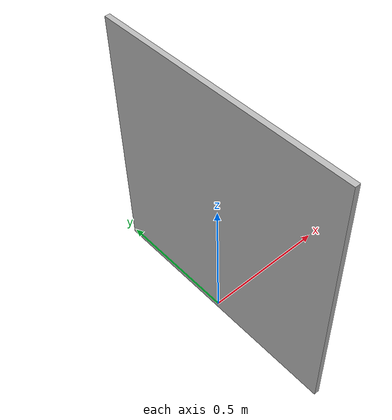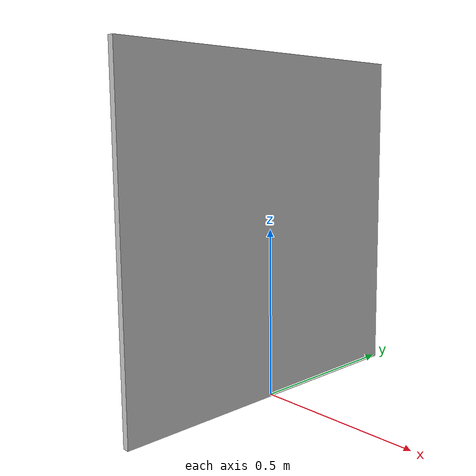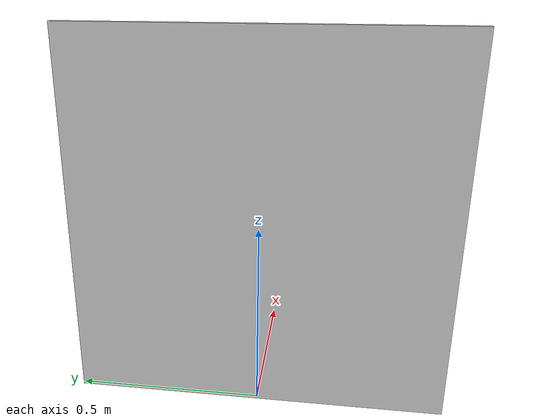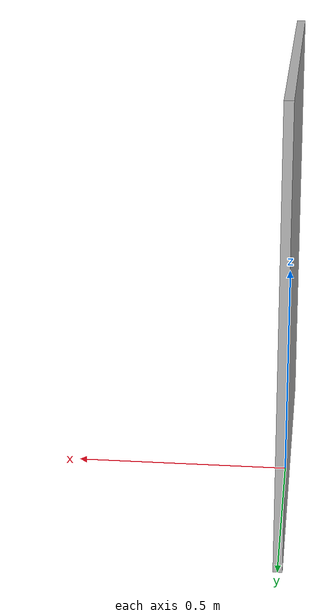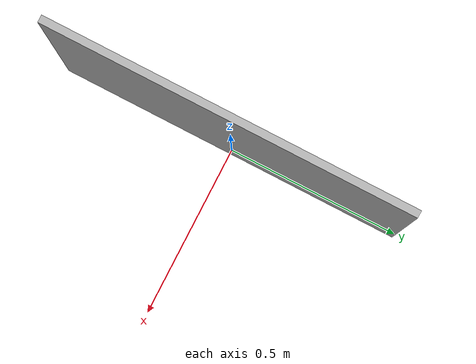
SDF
<?xml version="1.0" ?><sdf version="1.6">
  <model name="marker_0">
    <static>true</static>
    <link name="link">
      <visual name="visual">
        <geometry>
          <mesh>
            <uri>model://marker_0/meshes/marker_0.dae</uri>
          <scale>2.0 2.0 2.0</scale></mesh>
        </geometry>
      </visual>
    </link>

    <plugin
    filename="gz-sim-pose-publisher-system"
    name="gz::sim::systems::PosePublisher">
      <publish_link_pose>true</publish_link_pose>
      <use_pose_vector_msg>true</use_pose_vector_msg>
      <publish_nested_model_pose>true</publish_nested_model_pose>
      <static_publisher>true</static_publisher>
      <static_update_frequency>1</static_update_frequency>
    </plugin>

  </model>
</sdf>
